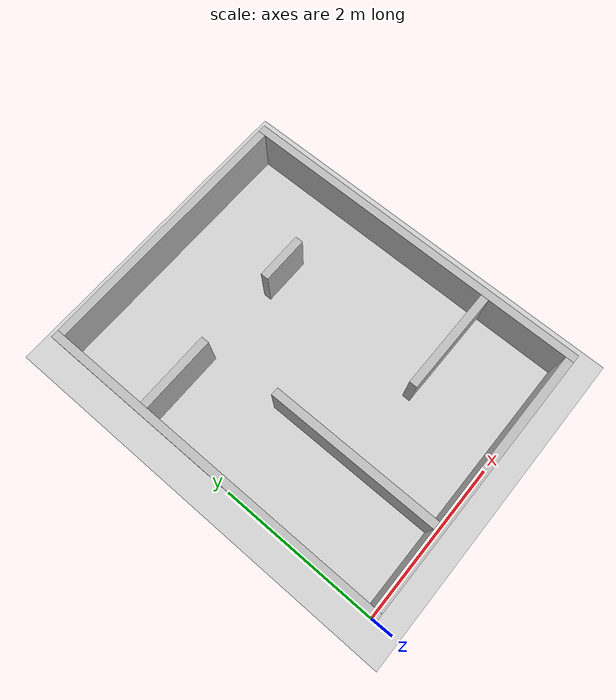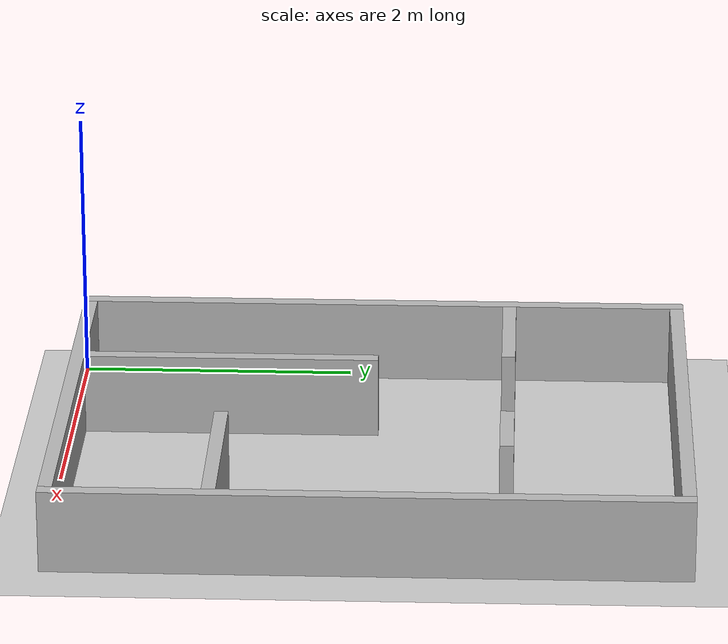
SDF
<sdf version="1.6">
<world name="default">
<include>
<uri>model://sun</uri>
</include>
<include>
<uri>model://ground_plane</uri>
</include>
<model name="Maze">
<pose>0 0 0 0 0 0 0</pose>
<link name="link_0">
<pose>1.1 1.175 0.3 0 0 0 0</pose>
<inertial>
<pose>0 0 0 0 0 0</pose>
<mass>1</mass>
</inertial>
<collision name="collision_0">
<geometry>
<box>
<size>0.1 2.15 0.6</size>
</box>
</geometry>
</collision>
<visual name="visual_0">
<geometry>
<box>
<size>0.1 2.15 0.6</size>
</box>
</geometry>
</visual>
</link>
<link name="link_1">
<pose>2.75 1.1700000000000002 0.3 0 0 0 0</pose>
<inertial>
<pose>0 0 0 0 0 0</pose>
<mass>1</mass>
</inertial>
<collision name="collision_1">
<geometry>
<box>
<size>1.3 0.1 0.6</size>
</box>
</geometry>
</collision>
<visual name="visual_1">
<geometry>
<box>
<size>1.3 0.1 0.6</size>
</box>
</geometry>
</visual>
</link>
<link name="link_2">
<pose>0.5750000000000001 3.1999999999999997 0.3 0 0 0 0</pose>
<inertial>
<pose>0 0 0 0 0 0</pose>
<mass>1</mass>
</inertial>
<collision name="collision_2">
<geometry>
<box>
<size>0.9500000000000001 0.1 0.6</size>
</box>
</geometry>
</collision>
<visual name="visual_2">
<geometry>
<box>
<size>0.9500000000000001 0.1 0.6</size>
</box>
</geometry>
</visual>
</link>
<link name="link_3">
<pose>2.32 3.1999999999999997 0.3 0 0 0 0</pose>
<inertial>
<pose>0 0 0 0 0 0</pose>
<mass>1</mass>
</inertial>
<collision name="collision_3">
<geometry>
<box>
<size>0.6 0.1 0.6</size>
</box>
</geometry>
</collision>
<visual name="visual_3">
<geometry>
<box>
<size>0.6 0.1 0.6</size>
</box>
</geometry>
</visual>
</link>
<link name="link_4">
<pose>0.05 2.25 0.3 0 0 0 0</pose>
<inertial>
<pose>0 0 0 0 0 0</pose>
<mass>1</mass>
</inertial>
<collision name="collision_4">
<geometry>
<box>
<size>0.1 4.5 0.6</size>
</box>
</geometry>
</collision>
<visual name="visual_4">
<geometry>
<box>
<size>0.1 4.5 0.6</size>
</box>
</geometry>
</visual>
</link>
<link name="link_5">
<pose>3.4499999999999997 2.25 0.3 0 0 0 0</pose>
<inertial>
<pose>0 0 0 0 0 0</pose>
<mass>1</mass>
</inertial>
<collision name="collision_5">
<geometry>
<box>
<size>0.1 4.5 0.6</size>
</box>
</geometry>
</collision>
<visual name="visual_5">
<geometry>
<box>
<size>0.1 4.5 0.6</size>
</box>
</geometry>
</visual>
</link>
<link name="link_6">
<pose>1.7500000000000002 0.05 0.3 0 0 0 0</pose>
<inertial>
<pose>0 0 0 0 0 0</pose>
<mass>1</mass>
</inertial>
<collision name="collision_6">
<geometry>
<box>
<size>3.3000000000000003 0.1 0.6</size>
</box>
</geometry>
</collision>
<visual name="visual_6">
<geometry>
<box>
<size>3.3000000000000003 0.1 0.6</size>
</box>
</geometry>
</visual>
</link>
<link name="link_7">
<pose>1.7500000000000002 4.45 0.3 0 0 0 0</pose>
<inertial>
<pose>0 0 0 0 0 0</pose>
<mass>1</mass>
</inertial>
<collision name="collision_7">
<geometry>
<box>
<size>3.3000000000000003 0.1 0.6</size>
</box>
</geometry>
</collision>
<visual name="visual_7">
<geometry>
<box>
<size>3.3000000000000003 0.1 0.6</size>
</box>
</geometry>
</visual>
</link>
</model>
</world>
</sdf>
